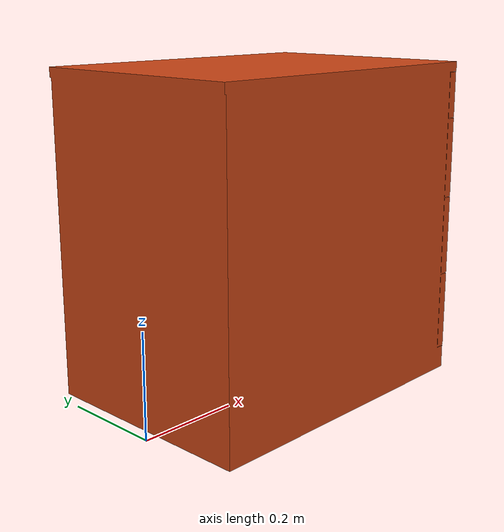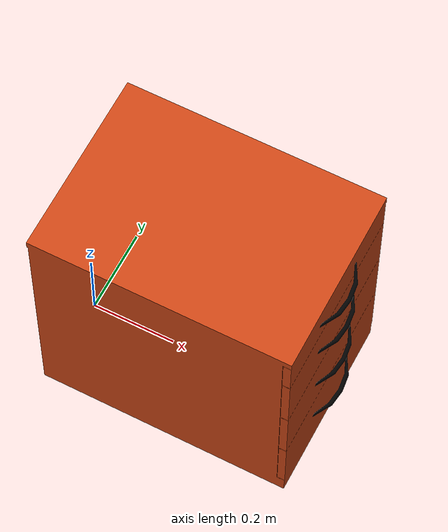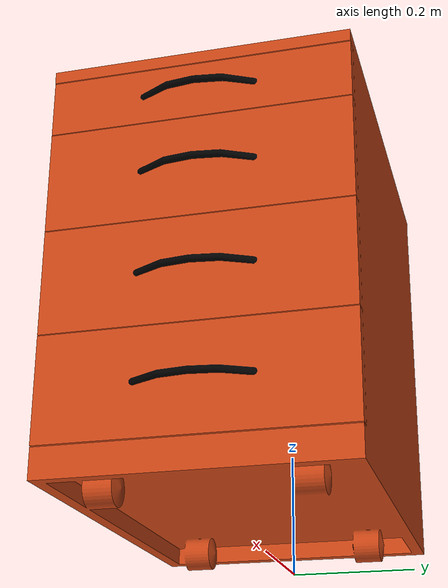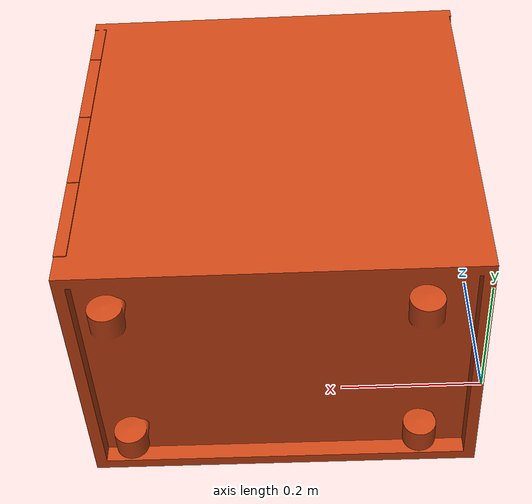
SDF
<?xml version="1.0" ?>
<sdf version="1.5">
  <model name="driving_cabinet_4d">
    <static>true</static>
    <link name="driving_cabinet_4d">
      <collision name="driving_cabinet_4d">
        <pose>0 0 0 0 0 0</pose>
        <geometry>
          <mesh>
            <uri>model://driving_cabinet_4d/meshes/model.dae</uri>
          </mesh>
        </geometry>
      </collision>

      <visual name="driving_cabinet_4d">
      <cast_shadows>true</cast_shadows>
        <geometry>
          <mesh>
          <uri>model://driving_cabinet_4d/meshes/model.dae</uri>
        </mesh>
        </geometry>
      </visual>
    </link>
  </model>
</sdf>
